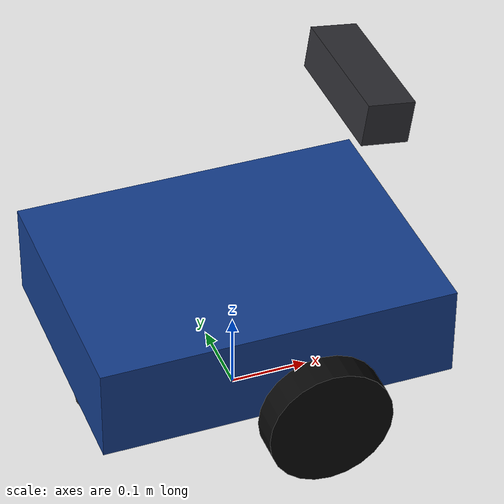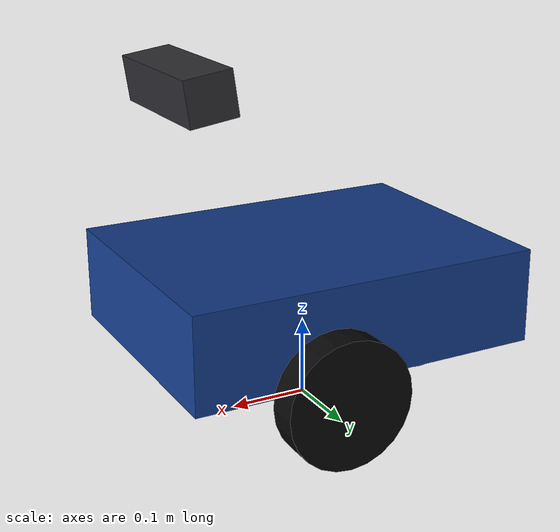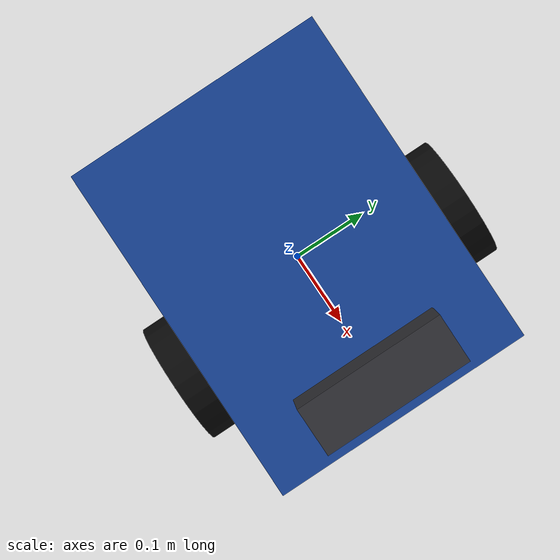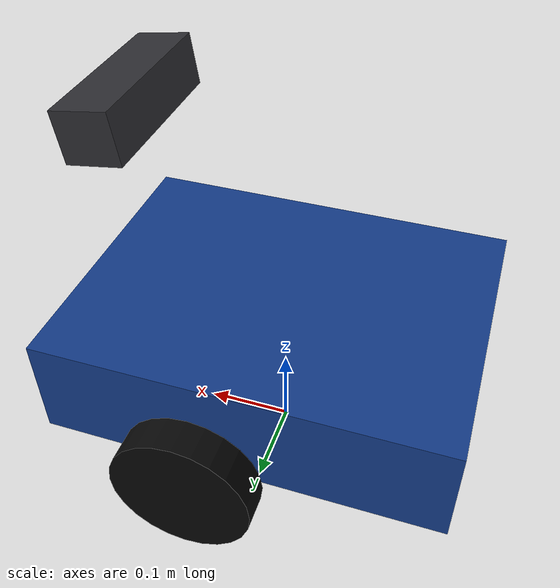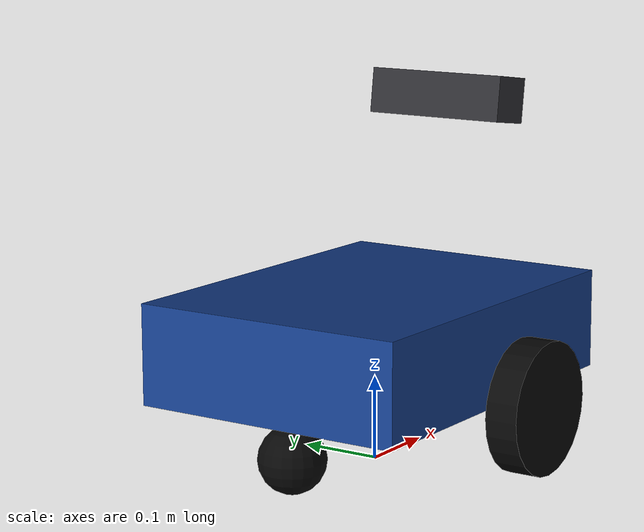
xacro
<?xml version="1.0"?>
<robot xmlns:xacro="http://www.ros.org/wiki/xacro" name="stereo_rover">
  <xacro:property name="wheel_radius" value="0.08"/>
  <xacro:property name="wheel_width" value="0.04"/>
  <xacro:property name="wheel_y" value="0.19"/>

  <material name="chassis_blue">
    <color rgba="0.08 0.24 0.55 1.0"/>
  </material>
  <material name="wheel_black">
    <color rgba="0.03 0.03 0.03 1.0"/>
  </material>
  <material name="camera_gray">
    <color rgba="0.18 0.18 0.20 1.0"/>
  </material>

  <link name="base_link">
    <inertial>
      <origin xyz="0 0 0.15"/>
      <mass value="12.0"/>
      <inertia ixx="0.130" ixy="0" ixz="0" iyy="0.240" iyz="0" izz="0.310"/>
    </inertial>
    <visual>
      <origin xyz="0 0 0.15"/>
      <geometry><box size="0.45 0.34 0.12"/></geometry>
      <material name="chassis_blue"/>
    </visual>
    <collision>
      <origin xyz="0 0 0.15"/>
      <geometry><box size="0.45 0.34 0.12"/></geometry>
    </collision>
  </link>

  <xacro:macro name="wheel" params="name y">
    <link name="${name}_wheel_link">
      <inertial>
        <mass value="0.6"/>
        <inertia ixx="0.0021" ixy="0" ixz="0" iyy="0.0038" iyz="0" izz="0.0021"/>
      </inertial>
      <visual>
        <origin rpy="${pi/2} 0 0"/>
        <geometry><cylinder radius="${wheel_radius}" length="${wheel_width}"/></geometry>
        <material name="wheel_black"/>
      </visual>
      <collision>
        <origin rpy="${pi/2} 0 0"/>
        <geometry><cylinder radius="${wheel_radius}" length="${wheel_width}"/></geometry>
      </collision>
    </link>
    <joint name="${name}_wheel_joint" type="continuous">
      <parent link="base_link"/>
      <child link="${name}_wheel_link"/>
      <origin xyz="0.05 ${y} ${wheel_radius}"/>
      <axis xyz="0 1 0"/>
    </joint>
  </xacro:macro>

  <xacro:wheel name="left" y="${wheel_y}"/>
  <xacro:wheel name="right" y="${-wheel_y}"/>

  <link name="rear_caster_link">
    <visual>
      <geometry><sphere radius="0.04"/></geometry>
      <material name="wheel_black"/>
    </visual>
    <collision><geometry><sphere radius="0.04"/></geometry></collision>
  </link>
  <joint name="rear_caster_joint" type="fixed">
    <parent link="base_link"/>
    <child link="rear_caster_link"/>
    <origin xyz="-0.17 0 0.04"/>
  </joint>

  <link name="camera_rig_link">
    <visual>
      <geometry><box size="0.06 0.18 0.055"/></geometry>
      <material name="camera_gray"/>
    </visual>
  </link>
  <joint name="camera_rig_joint" type="fixed">
    <parent link="base_link"/>
    <child link="camera_rig_link"/>
    <origin xyz="0.16 0 0.42" rpy="0 0.1396263402 0"/>
  </joint>

  <xacro:macro name="camera_frames" params="side y">
    <link name="stereo_${side}_frame"/>
    <joint name="stereo_${side}_joint" type="fixed">
      <parent link="camera_rig_link"/>
      <child link="stereo_${side}_frame"/>
      <origin xyz="0 ${y} 0"/>
    </joint>

    <link name="stereo_${side}_optical_frame"/>
    <joint name="stereo_${side}_optical_joint" type="fixed">
      <parent link="stereo_${side}_frame"/>
      <child link="stereo_${side}_optical_frame"/>
      <origin xyz="0 0 0" rpy="${-pi/2} 0 ${-pi/2}"/>
    </joint>
  </xacro:macro>

  <xacro:camera_frames side="left" y="0.06"/>
  <xacro:camera_frames side="right" y="-0.06"/>
</robot>
